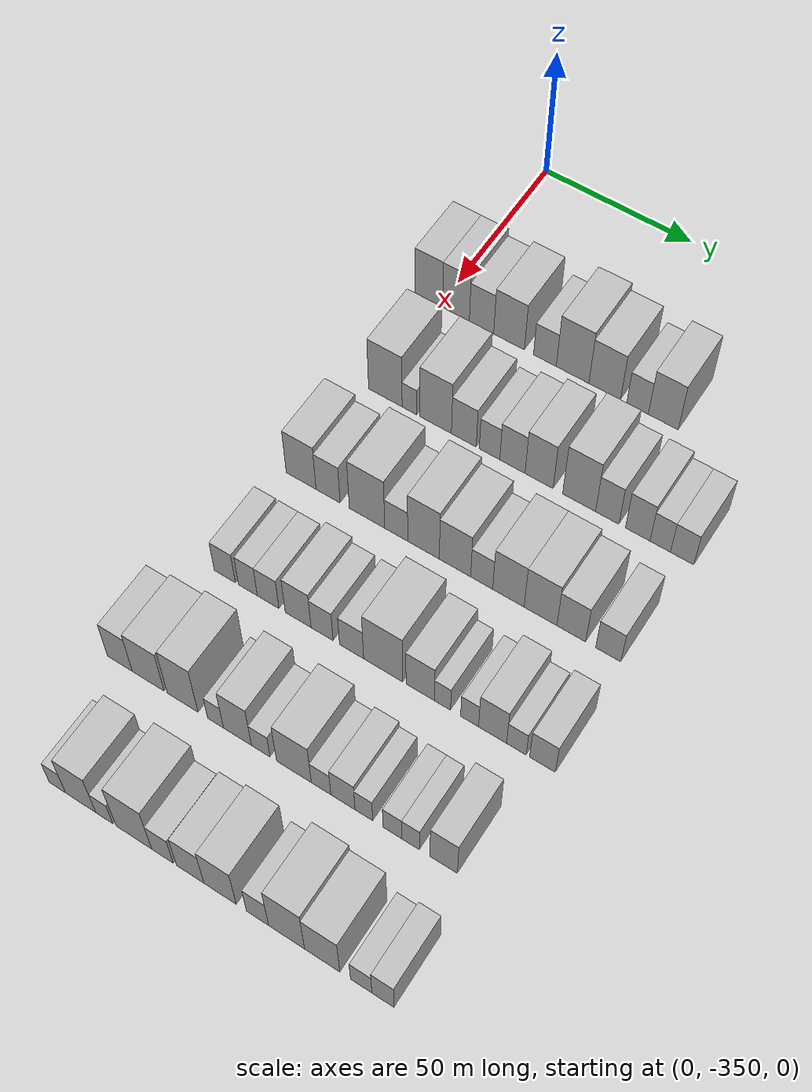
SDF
<sdf version="1.6">
 <world name="default">
  <model name="building_23">
   <static>1</static>
   <pose>50.0000 -353.7512 0 0.000000 0.000000 0.000000</pose>
   <link name="link">
    <pose>0 0 10.50 0 0 0</pose>
    <collision name="collision"><geometry><box><size>20.0000 9.3906 21.0000</size></box></geometry></collision>
    <visual name="visual">
     <cast_shadows>0</cast_shadows>
     <geometry><box><size>20.0000 9.3906 21.0000</size></box></geometry>
     <material>
      <script>
       <uri>model://HANNAS_wall/materials/scripts</uri>
       <uri>model://HANNAS_wall/materials/textures</uri>
       <name>vrc/HANNAS_wall</name>
      </script>
     </material>
    </visual>
   </link>
  </model>
  <model name="building_24">
   <static>1</static>
   <pose>50.0000 -344.5067 0 0.000000 0.000000 0.000000</pose>
   <link name="link">
    <pose>0 0 10.50 0 0 0</pose>
    <collision name="collision"><geometry><box><size>20.0000 9.0984 21.0000</size></box></geometry></collision>
    <visual name="visual">
     <cast_shadows>0</cast_shadows>
     <geometry><box><size>20.0000 9.0984 21.0000</size></box></geometry>
     <material>
      <script>
       <uri>model://HANNAS_wall/materials/scripts</uri>
       <uri>model://HANNAS_wall/materials/textures</uri>
       <name>vrc/HANNAS_wall</name>
      </script>
     </material>
    </visual>
   </link>
  </model>
  <model name="building_25">
   <static>1</static>
   <pose>50.0000 -335.8646 0 0.000000 0.000000 0.000000</pose>
   <link name="link">
    <pose>0 0 9.00 0 0 0</pose>
    <collision name="collision"><geometry><box><size>20.0000 8.1859 18.0000</size></box></geometry></collision>
    <visual name="visual">
     <cast_shadows>0</cast_shadows>
     <geometry><box><size>20.0000 8.1859 18.0000</size></box></geometry>
     <material>
      <script>
       <uri>model://HANNAS_wall/materials/scripts</uri>
       <uri>model://HANNAS_wall/materials/textures</uri>
       <name>vrc/HANNAS_wall</name>
      </script>
     </material>
    </visual>
   </link>
  </model>
  <model name="building_26">
   <static>1</static>
   <pose>50.0000 -326.6556 0 0.000000 0.000000 0.000000</pose>
   <link name="link">
    <pose>0 0 10.50 0 0 0</pose>
    <collision name="collision"><geometry><box><size>20.0000 10.2320 21.0000</size></box></geometry></collision>
    <visual name="visual">
     <cast_shadows>0</cast_shadows>
     <geometry><box><size>20.0000 10.2320 21.0000</size></box></geometry>
     <material>
      <script>
       <uri>model://HANNAS_wall/materials/scripts</uri>
       <uri>model://HANNAS_wall/materials/textures</uri>
       <name>vrc/HANNAS_wall</name>
      </script>
     </material>
    </visual>
   </link>
  </model>
  <model name="building_27">
   <static>1</static>
   <pose>50.0000 -314.8026 0 0.000000 0.000000 0.000000</pose>
   <link name="link">
    <pose>0 0 7.50 0 0 0</pose>
    <collision name="collision"><geometry><box><size>20.0000 7.4739 15.0000</size></box></geometry></collision>
    <visual name="visual">
     <cast_shadows>0</cast_shadows>
     <geometry><box><size>20.0000 7.4739 15.0000</size></box></geometry>
     <material>
      <script>
       <uri>model://HANNAS_wall/materials/scripts</uri>
       <uri>model://HANNAS_wall/materials/textures</uri>
       <name>vrc/HANNAS_wall</name>
      </script>
     </material>
    </visual>
   </link>
  </model>
  <model name="building_28">
   <static>1</static>
   <pose>50.0000 -305.7627 0 0.000000 0.000000 0.000000</pose>
   <link name="link">
    <pose>0 0 12.00 0 0 0</pose>
    <collision name="collision"><geometry><box><size>20.0000 10.6061 24.0000</size></box></geometry></collision>
    <visual name="visual">
     <cast_shadows>0</cast_shadows>
     <geometry><box><size>20.0000 10.6061 24.0000</size></box></geometry>
     <material>
      <script>
       <uri>model://HANNAS_wall/materials/scripts</uri>
       <uri>model://HANNAS_wall/materials/textures</uri>
       <name>vrc/HANNAS_wall</name>
      </script>
     </material>
    </visual>
   </link>
  </model>
  <model name="building_29">
   <static>1</static>
   <pose>50.0000 -295.3721 0 0.000000 0.000000 0.000000</pose>
   <link name="link">
    <pose>0 0 10.50 0 0 0</pose>
    <collision name="collision"><geometry><box><size>20.0000 10.1751 21.0000</size></box></geometry></collision>
    <visual name="visual">
     <cast_shadows>0</cast_shadows>
     <geometry><box><size>20.0000 10.1751 21.0000</size></box></geometry>
     <material>
      <script>
       <uri>model://HANNAS_wall/materials/scripts</uri>
       <uri>model://HANNAS_wall/materials/textures</uri>
       <name>vrc/HANNAS_wall</name>
      </script>
     </material>
    </visual>
   </link>
  </model>
  <model name="building_30">
   <static>1</static>
   <pose>50.0000 -284.8500 0 0.000000 0.000000 0.000000</pose>
   <link name="link">
    <pose>0 0 7.50 0 0 0</pose>
    <collision name="collision"><geometry><box><size>20.0000 6.8691 15.0000</size></box></geometry></collision>
    <visual name="visual">
     <cast_shadows>0</cast_shadows>
     <geometry><box><size>20.0000 6.8691 15.0000</size></box></geometry>
     <material>
      <script>
       <uri>model://HANNAS_wall/materials/scripts</uri>
       <uri>model://HANNAS_wall/materials/textures</uri>
       <name>vrc/HANNAS_wall</name>
      </script>
     </material>
    </visual>
   </link>
  </model>
  <model name="building_31">
   <static>1</static>
   <pose>50.0000 -276.6889 0 0.000000 0.000000 0.000000</pose>
   <link name="link">
    <pose>0 0 10.50 0 0 0</pose>
    <collision name="collision"><geometry><box><size>20.0000 9.4531 21.0000</size></box></geometry></collision>
    <visual name="visual">
     <cast_shadows>0</cast_shadows>
     <geometry><box><size>20.0000 9.4531 21.0000</size></box></geometry>
     <material>
      <script>
       <uri>model://HANNAS_wall/materials/scripts</uri>
       <uri>model://HANNAS_wall/materials/textures</uri>
       <name>vrc/HANNAS_wall</name>
      </script>
     </material>
    </visual>
   </link>
  </model>
  <model name="building_142">
   <static>1</static>
   <pose>85.0000 -345.7293 0 0.000000 0.000000 0.000000</pose>
   <link name="link">
    <pose>0 0 12.00 0 0 0</pose>
    <collision name="collision"><geometry><box><size>20.0000 11.1748 24.0000</size></box></geometry></collision>
    <visual name="visual">
     <cast_shadows>0</cast_shadows>
     <geometry><box><size>20.0000 11.1748 24.0000</size></box></geometry>
     <material>
      <script>
       <uri>model://HANNAS_wall/materials/scripts</uri>
       <uri>model://HANNAS_wall/materials/textures</uri>
       <name>vrc/HANNAS_wall</name>
      </script>
     </material>
    </visual>
   </link>
  </model>
  <model name="building_143">
   <static>1</static>
   <pose>85.0000 -337.7078 0 0.000000 0.000000 0.000000</pose>
   <link name="link">
    <pose>0 0 6.00 0 0 0</pose>
    <collision name="collision"><geometry><box><size>20.0000 4.8684 12.0000</size></box></geometry></collision>
    <visual name="visual">
     <cast_shadows>0</cast_shadows>
     <geometry><box><size>20.0000 4.8684 12.0000</size></box></geometry>
     <material>
      <script>
       <uri>model://HANNAS_wall/materials/scripts</uri>
       <uri>model://HANNAS_wall/materials/textures</uri>
       <name>vrc/HANNAS_wall</name>
      </script>
     </material>
    </visual>
   </link>
  </model>
  <model name="building_144">
   <static>1</static>
   <pose>85.0000 -329.1090 0 0.000000 0.000000 0.000000</pose>
   <link name="link">
    <pose>0 0 12.00 0 0 0</pose>
    <collision name="collision"><geometry><box><size>20.0000 10.3293 24.0000</size></box></geometry></collision>
    <visual name="visual">
     <cast_shadows>0</cast_shadows>
     <geometry><box><size>20.0000 10.3293 24.0000</size></box></geometry>
     <material>
      <script>
       <uri>model://HANNAS_wall/materials/scripts</uri>
       <uri>model://HANNAS_wall/materials/textures</uri>
       <name>vrc/HANNAS_wall</name>
      </script>
     </material>
    </visual>
   </link>
  </model>
  <model name="building_145">
   <static>1</static>
   <pose>85.0000 -319.9178 0 0.000000 0.000000 0.000000</pose>
   <link name="link">
    <pose>0 0 9.00 0 0 0</pose>
    <collision name="collision"><geometry><box><size>20.0000 8.0530 18.0000</size></box></geometry></collision>
    <visual name="visual">
     <cast_shadows>0</cast_shadows>
     <geometry><box><size>20.0000 8.0530 18.0000</size></box></geometry>
     <material>
      <script>
       <uri>model://HANNAS_wall/materials/scripts</uri>
       <uri>model://HANNAS_wall/materials/textures</uri>
       <name>vrc/HANNAS_wall</name>
      </script>
     </material>
    </visual>
   </link>
  </model>
  <model name="building_146">
   <static>1</static>
   <pose>85.0000 -311.6023 0 0.000000 0.000000 0.000000</pose>
   <link name="link">
    <pose>0 0 7.50 0 0 0</pose>
    <collision name="collision"><geometry><box><size>20.0000 6.5780 15.0000</size></box></geometry></collision>
    <visual name="visual">
     <cast_shadows>0</cast_shadows>
     <geometry><box><size>20.0000 6.5780 15.0000</size></box></geometry>
     <material>
      <script>
       <uri>model://HANNAS_wall/materials/scripts</uri>
       <uri>model://HANNAS_wall/materials/textures</uri>
       <name>vrc/HANNAS_wall</name>
      </script>
     </material>
    </visual>
   </link>
  </model>
  <model name="building_147">
   <static>1</static>
   <pose>85.0000 -304.2906 0 0.000000 0.000000 0.000000</pose>
   <link name="link">
    <pose>0 0 9.00 0 0 0</pose>
    <collision name="collision"><geometry><box><size>20.0000 8.0453 18.0000</size></box></geometry></collision>
    <visual name="visual">
     <cast_shadows>0</cast_shadows>
     <geometry><box><size>20.0000 8.0453 18.0000</size></box></geometry>
     <material>
      <script>
       <uri>model://HANNAS_wall/materials/scripts</uri>
       <uri>model://HANNAS_wall/materials/textures</uri>
       <name>vrc/HANNAS_wall</name>
      </script>
     </material>
    </visual>
   </link>
  </model>
  <model name="building_148">
   <static>1</static>
   <pose>85.0000 -295.8317 0 0.000000 0.000000 0.000000</pose>
   <link name="link">
    <pose>0 0 10.50 0 0 0</pose>
    <collision name="collision"><geometry><box><size>20.0000 8.8725 21.0000</size></box></geometry></collision>
    <visual name="visual">
     <cast_shadows>0</cast_shadows>
     <geometry><box><size>20.0000 8.8725 21.0000</size></box></geometry>
     <material>
      <script>
       <uri>model://HANNAS_wall/materials/scripts</uri>
       <uri>model://HANNAS_wall/materials/textures</uri>
       <name>vrc/HANNAS_wall</name>
      </script>
     </material>
    </visual>
   </link>
  </model>
  <model name="building_149">
   <static>1</static>
   <pose>85.0000 -283.2742 0 0.000000 0.000000 0.000000</pose>
   <link name="link">
    <pose>0 0 12.00 0 0 0</pose>
    <collision name="collision"><geometry><box><size>20.0000 10.2426 24.0000</size></box></geometry></collision>
    <visual name="visual">
     <cast_shadows>0</cast_shadows>
     <geometry><box><size>20.0000 10.2426 24.0000</size></box></geometry>
     <material>
      <script>
       <uri>model://HANNAS_wall/materials/scripts</uri>
       <uri>model://HANNAS_wall/materials/textures</uri>
       <name>vrc/HANNAS_wall</name>
      </script>
     </material>
    </visual>
   </link>
  </model>
  <model name="building_150">
   <static>1</static>
   <pose>85.0000 -274.5522 0 0.000000 0.000000 0.000000</pose>
   <link name="link">
    <pose>0 0 9.00 0 0 0</pose>
    <collision name="collision"><geometry><box><size>20.0000 7.2014 18.0000</size></box></geometry></collision>
    <visual name="visual">
     <cast_shadows>0</cast_shadows>
     <geometry><box><size>20.0000 7.2014 18.0000</size></box></geometry>
     <material>
      <script>
       <uri>model://HANNAS_wall/materials/scripts</uri>
       <uri>model://HANNAS_wall/materials/textures</uri>
       <name>vrc/HANNAS_wall</name>
      </script>
     </material>
    </visual>
   </link>
  </model>
  <model name="building_151">
   <static>1</static>
   <pose>85.0000 -265.1912 0 0.000000 0.000000 0.000000</pose>
   <link name="link">
    <pose>0 0 9.00 0 0 0</pose>
    <collision name="collision"><geometry><box><size>20.0000 7.5205 18.0000</size></box></geometry></collision>
    <visual name="visual">
     <cast_shadows>0</cast_shadows>
     <geometry><box><size>20.0000 7.5205 18.0000</size></box></geometry>
     <material>
      <script>
       <uri>model://HANNAS_wall/materials/scripts</uri>
       <uri>model://HANNAS_wall/materials/textures</uri>
       <name>vrc/HANNAS_wall</name>
      </script>
     </material>
    </visual>
   </link>
  </model>
  <model name="building_152">
   <static>1</static>
   <pose>85.0000 -258.3501 0 0.000000 0.000000 0.000000</pose>
   <link name="link">
    <pose>0 0 7.50 0 0 0</pose>
    <collision name="collision"><geometry><box><size>20.0000 6.1619 15.0000</size></box></geometry></collision>
    <visual name="visual">
     <cast_shadows>0</cast_shadows>
     <geometry><box><size>20.0000 6.1619 15.0000</size></box></geometry>
     <material>
      <script>
       <uri>model://HANNAS_wall/materials/scripts</uri>
       <uri>model://HANNAS_wall/materials/textures</uri>
       <name>vrc/HANNAS_wall</name>
      </script>
     </material>
    </visual>
   </link>
  </model>
  <model name="building_153">
   <static>1</static>
   <pose>85.0000 -251.7673 0 0.000000 0.000000 0.000000</pose>
   <link name="link">
    <pose>0 0 7.50 0 0 0</pose>
    <collision name="collision"><geometry><box><size>20.0000 7.0036 15.0000</size></box></geometry></collision>
    <visual name="visual">
     <cast_shadows>0</cast_shadows>
     <geometry><box><size>20.0000 7.0036 15.0000</size></box></geometry>
     <material>
      <script>
       <uri>model://HANNAS_wall/materials/scripts</uri>
       <uri>model://HANNAS_wall/materials/textures</uri>
       <name>vrc/HANNAS_wall</name>
      </script>
     </material>
    </visual>
   </link>
  </model>
  <model name="building_274">
   <static>1</static>
   <pose>120.0000 -350.0368 0 0.000000 0.000000 0.000000</pose>
   <link name="link">
    <pose>0 0 10.50 0 0 0</pose>
    <collision name="collision"><geometry><box><size>20.0000 9.8256 21.0000</size></box></geometry></collision>
    <visual name="visual">
     <cast_shadows>0</cast_shadows>
     <geometry><box><size>20.0000 9.8256 21.0000</size></box></geometry>
     <material>
      <script>
       <uri>model://HANNAS_wall/materials/scripts</uri>
       <uri>model://HANNAS_wall/materials/textures</uri>
       <name>vrc/HANNAS_wall</name>
      </script>
     </material>
    </visual>
   </link>
  </model>
  <model name="building_275">
   <static>1</static>
   <pose>120.0000 -341.2023 0 0.000000 0.000000 0.000000</pose>
   <link name="link">
    <pose>0 0 9.00 0 0 0</pose>
    <collision name="collision"><geometry><box><size>20.0000 7.8434 18.0000</size></box></geometry></collision>
    <visual name="visual">
     <cast_shadows>0</cast_shadows>
     <geometry><box><size>20.0000 7.8434 18.0000</size></box></geometry>
     <material>
      <script>
       <uri>model://HANNAS_wall/materials/scripts</uri>
       <uri>model://HANNAS_wall/materials/textures</uri>
       <name>vrc/HANNAS_wall</name>
      </script>
     </material>
    </visual>
   </link>
  </model>
  <model name="building_276">
   <static>1</static>
   <pose>120.0000 -328.5918 0 0.000000 0.000000 0.000000</pose>
   <link name="link">
    <pose>0 0 12.00 0 0 0</pose>
    <collision name="collision"><geometry><box><size>20.0000 11.3776 24.0000</size></box></geometry></collision>
    <visual name="visual">
     <cast_shadows>0</cast_shadows>
     <geometry><box><size>20.0000 11.3776 24.0000</size></box></geometry>
     <material>
      <script>
       <uri>model://HANNAS_wall/materials/scripts</uri>
       <uri>model://HANNAS_wall/materials/textures</uri>
       <name>vrc/HANNAS_wall</name>
      </script>
     </material>
    </visual>
   </link>
  </model>
  <model name="building_277">
   <static>1</static>
   <pose>120.0000 -319.2390 0 0.000000 0.000000 0.000000</pose>
   <link name="link">
    <pose>0 0 7.50 0 0 0</pose>
    <collision name="collision"><geometry><box><size>20.0000 7.3280 15.0000</size></box></geometry></collision>
    <visual name="visual">
     <cast_shadows>0</cast_shadows>
     <geometry><box><size>20.0000 7.3280 15.0000</size></box></geometry>
     <material>
      <script>
       <uri>model://HANNAS_wall/materials/scripts</uri>
       <uri>model://HANNAS_wall/materials/textures</uri>
       <name>vrc/HANNAS_wall</name>
      </script>
     </material>
    </visual>
   </link>
  </model>
  <model name="building_278">
   <static>1</static>
   <pose>120.0000 -310.6025 0 0.000000 0.000000 0.000000</pose>
   <link name="link">
    <pose>0 0 12.00 0 0 0</pose>
    <collision name="collision"><geometry><box><size>20.0000 9.9450 24.0000</size></box></geometry></collision>
    <visual name="visual">
     <cast_shadows>0</cast_shadows>
     <geometry><box><size>20.0000 9.9450 24.0000</size></box></geometry>
     <material>
      <script>
       <uri>model://HANNAS_wall/materials/scripts</uri>
       <uri>model://HANNAS_wall/materials/textures</uri>
       <name>vrc/HANNAS_wall</name>
      </script>
     </material>
    </visual>
   </link>
  </model>
  <model name="building_279">
   <static>1</static>
   <pose>120.0000 -300.7458 0 0.000000 0.000000 0.000000</pose>
   <link name="link">
    <pose>0 0 10.50 0 0 0</pose>
    <collision name="collision"><geometry><box><size>20.0000 9.7685 21.0000</size></box></geometry></collision>
    <visual name="visual">
     <cast_shadows>0</cast_shadows>
     <geometry><box><size>20.0000 9.7685 21.0000</size></box></geometry>
     <material>
      <script>
       <uri>model://HANNAS_wall/materials/scripts</uri>
       <uri>model://HANNAS_wall/materials/textures</uri>
       <name>vrc/HANNAS_wall</name>
      </script>
     </material>
    </visual>
   </link>
  </model>
  <model name="building_280">
   <static>1</static>
   <pose>120.0000 -292.4542 0 0.000000 0.000000 0.000000</pose>
   <link name="link">
    <pose>0 0 7.50 0 0 0</pose>
    <collision name="collision"><geometry><box><size>20.0000 6.8147 15.0000</size></box></geometry></collision>
    <visual name="visual">
     <cast_shadows>0</cast_shadows>
     <geometry><box><size>20.0000 6.8147 15.0000</size></box></geometry>
     <material>
      <script>
       <uri>model://HANNAS_wall/materials/scripts</uri>
       <uri>model://HANNAS_wall/materials/textures</uri>
       <name>vrc/HANNAS_wall</name>
      </script>
     </material>
    </visual>
   </link>
  </model>
  <model name="building_281">
   <static>1</static>
   <pose>120.0000 -284.2448 0 0.000000 0.000000 0.000000</pose>
   <link name="link">
    <pose>0 0 10.50 0 0 0</pose>
    <collision name="collision"><geometry><box><size>20.0000 9.6041 21.0000</size></box></geometry></collision>
    <visual name="visual">
     <cast_shadows>0</cast_shadows>
     <geometry><box><size>20.0000 9.6041 21.0000</size></box></geometry>
     <material>
      <script>
       <uri>model://HANNAS_wall/materials/scripts</uri>
       <uri>model://HANNAS_wall/materials/textures</uri>
       <name>vrc/HANNAS_wall</name>
      </script>
     </material>
    </visual>
   </link>
  </model>
  <model name="building_282">
   <static>1</static>
   <pose>120.0000 -274.4913 0 0.000000 0.000000 0.000000</pose>
   <link name="link">
    <pose>0 0 10.50 0 0 0</pose>
    <collision name="collision"><geometry><box><size>20.0000 9.9029 21.0000</size></box></geometry></collision>
    <visual name="visual">
     <cast_shadows>0</cast_shadows>
     <geometry><box><size>20.0000 9.9029 21.0000</size></box></geometry>
     <material>
      <script>
       <uri>model://HANNAS_wall/materials/scripts</uri>
       <uri>model://HANNAS_wall/materials/textures</uri>
       <name>vrc/HANNAS_wall</name>
      </script>
     </material>
    </visual>
   </link>
  </model>
  <model name="building_283">
   <static>1</static>
   <pose>120.0000 -265.2507 0 0.000000 0.000000 0.000000</pose>
   <link name="link">
    <pose>0 0 9.00 0 0 0</pose>
    <collision name="collision"><geometry><box><size>20.0000 8.5784 18.0000</size></box></geometry></collision>
    <visual name="visual">
     <cast_shadows>0</cast_shadows>
     <geometry><box><size>20.0000 8.5784 18.0000</size></box></geometry>
     <material>
      <script>
       <uri>model://HANNAS_wall/materials/scripts</uri>
       <uri>model://HANNAS_wall/materials/textures</uri>
       <name>vrc/HANNAS_wall</name>
      </script>
     </material>
    </visual>
   </link>
  </model>
  <model name="building_284">
   <static>1</static>
   <pose>120.0000 -254.2512 0 0.000000 0.000000 0.000000</pose>
   <link name="link">
    <pose>0 0 7.50 0 0 0</pose>
    <collision name="collision"><geometry><box><size>20.0000 7.4207 15.0000</size></box></geometry></collision>
    <visual name="visual">
     <cast_shadows>0</cast_shadows>
     <geometry><box><size>20.0000 7.4207 15.0000</size></box></geometry>
     <material>
      <script>
       <uri>model://HANNAS_wall/materials/scripts</uri>
       <uri>model://HANNAS_wall/materials/textures</uri>
       <name>vrc/HANNAS_wall</name>
      </script>
     </material>
    </visual>
   </link>
  </model>
  <model name="building_403">
   <static>1</static>
   <pose>155.0000 -350.2035 0 0.000000 0.000000 0.000000</pose>
   <link name="link">
    <pose>0 0 7.50 0 0 0</pose>
    <collision name="collision"><geometry><box><size>20.0000 6.8617 15.0000</size></box></geometry></collision>
    <visual name="visual">
     <cast_shadows>0</cast_shadows>
     <geometry><box><size>20.0000 6.8617 15.0000</size></box></geometry>
     <material>
      <script>
       <uri>model://HANNAS_wall/materials/scripts</uri>
       <uri>model://HANNAS_wall/materials/textures</uri>
       <name>vrc/HANNAS_wall</name>
      </script>
     </material>
    </visual>
   </link>
  </model>
  <model name="building_404">
   <static>1</static>
   <pose>155.0000 -342.7320 0 0.000000 0.000000 0.000000</pose>
   <link name="link">
    <pose>0 0 7.50 0 0 0</pose>
    <collision name="collision"><geometry><box><size>20.0000 6.0814 15.0000</size></box></geometry></collision>
    <visual name="visual">
     <cast_shadows>0</cast_shadows>
     <geometry><box><size>20.0000 6.0814 15.0000</size></box></geometry>
     <material>
      <script>
       <uri>model://HANNAS_wall/materials/scripts</uri>
       <uri>model://HANNAS_wall/materials/textures</uri>
       <name>vrc/HANNAS_wall</name>
      </script>
     </material>
    </visual>
   </link>
  </model>
  <model name="building_405">
   <static>1</static>
   <pose>155.0000 -336.2530 0 0.000000 0.000000 0.000000</pose>
   <link name="link">
    <pose>0 0 7.50 0 0 0</pose>
    <collision name="collision"><geometry><box><size>20.0000 6.8766 15.0000</size></box></geometry></collision>
    <visual name="visual">
     <cast_shadows>0</cast_shadows>
     <geometry><box><size>20.0000 6.8766 15.0000</size></box></geometry>
     <material>
      <script>
       <uri>model://HANNAS_wall/materials/scripts</uri>
       <uri>model://HANNAS_wall/materials/textures</uri>
       <name>vrc/HANNAS_wall</name>
      </script>
     </material>
    </visual>
   </link>
  </model>
  <model name="building_406">
   <static>1</static>
   <pose>155.0000 -326.7453 0 0.000000 0.000000 0.000000</pose>
   <link name="link">
    <pose>0 0 9.00 0 0 0</pose>
    <collision name="collision"><geometry><box><size>20.0000 8.1388 18.0000</size></box></geometry></collision>
    <visual name="visual">
     <cast_shadows>0</cast_shadows>
     <geometry><box><size>20.0000 8.1388 18.0000</size></box></geometry>
     <material>
      <script>
       <uri>model://HANNAS_wall/materials/scripts</uri>
       <uri>model://HANNAS_wall/materials/textures</uri>
       <name>vrc/HANNAS_wall</name>
      </script>
     </material>
    </visual>
   </link>
  </model>
  <model name="building_407">
   <static>1</static>
   <pose>155.0000 -319.2228 0 0.000000 0.000000 0.000000</pose>
   <link name="link">
    <pose>0 0 7.50 0 0 0</pose>
    <collision name="collision"><geometry><box><size>20.0000 6.9063 15.0000</size></box></geometry></collision>
    <visual name="visual">
     <cast_shadows>0</cast_shadows>
     <geometry><box><size>20.0000 6.9063 15.0000</size></box></geometry>
     <material>
      <script>
       <uri>model://HANNAS_wall/materials/scripts</uri>
       <uri>model://HANNAS_wall/materials/textures</uri>
       <name>vrc/HANNAS_wall</name>
      </script>
     </material>
    </visual>
   </link>
  </model>
  <model name="building_408">
   <static>1</static>
   <pose>155.0000 -310.0334 0 0.000000 0.000000 0.000000</pose>
   <link name="link">
    <pose>0 0 7.50 0 0 0</pose>
    <collision name="collision"><geometry><box><size>20.0000 7.4723 15.0000</size></box></geometry></collision>
    <visual name="visual">
     <cast_shadows>0</cast_shadows>
     <geometry><box><size>20.0000 7.4723 15.0000</size></box></geometry>
     <material>
      <script>
       <uri>model://HANNAS_wall/materials/scripts</uri>
       <uri>model://HANNAS_wall/materials/textures</uri>
       <name>vrc/HANNAS_wall</name>
      </script>
     </material>
    </visual>
   </link>
  </model>
  <model name="building_409">
   <static>1</static>
   <pose>155.0000 -300.3277 0 0.000000 0.000000 0.000000</pose>
   <link name="link">
    <pose>0 0 12.00 0 0 0</pose>
    <collision name="collision"><geometry><box><size>20.0000 11.9391 24.0000</size></box></geometry></collision>
    <visual name="visual">
     <cast_shadows>0</cast_shadows>
     <geometry><box><size>20.0000 11.9391 24.0000</size></box></geometry>
     <material>
      <script>
       <uri>model://HANNAS_wall/materials/scripts</uri>
       <uri>model://HANNAS_wall/materials/textures</uri>
       <name>vrc/HANNAS_wall</name>
      </script>
     </material>
    </visual>
   </link>
  </model>
  <model name="building_410">
   <static>1</static>
   <pose>155.0000 -289.0894 0 0.000000 0.000000 0.000000</pose>
   <link name="link">
    <pose>0 0 9.00 0 0 0</pose>
    <collision name="collision"><geometry><box><size>20.0000 8.5375 18.0000</size></box></geometry></collision>
    <visual name="visual">
     <cast_shadows>0</cast_shadows>
     <geometry><box><size>20.0000 8.5375 18.0000</size></box></geometry>
     <material>
      <script>
       <uri>model://HANNAS_wall/materials/scripts</uri>
       <uri>model://HANNAS_wall/materials/textures</uri>
       <name>vrc/HANNAS_wall</name>
      </script>
     </material>
    </visual>
   </link>
  </model>
  <model name="building_411">
   <static>1</static>
   <pose>155.0000 -282.4134 0 0.000000 0.000000 0.000000</pose>
   <link name="link">
    <pose>0 0 6.00 0 0 0</pose>
    <collision name="collision"><geometry><box><size>20.0000 4.8145 12.0000</size></box></geometry></collision>
    <visual name="visual">
     <cast_shadows>0</cast_shadows>
     <geometry><box><size>20.0000 4.8145 12.0000</size></box></geometry>
     <material>
      <script>
       <uri>model://HANNAS_wall/materials/scripts</uri>
       <uri>model://HANNAS_wall/materials/textures</uri>
       <name>vrc/HANNAS_wall</name>
      </script>
     </material>
    </visual>
   </link>
  </model>
  <model name="building_412">
   <static>1</static>
   <pose>155.0000 -274.3517 0 0.000000 0.000000 0.000000</pose>
   <link name="link">
    <pose>0 0 6.00 0 0 0</pose>
    <collision name="collision"><geometry><box><size>20.0000 5.3087 12.0000</size></box></geometry></collision>
    <visual name="visual">
     <cast_shadows>0</cast_shadows>
     <geometry><box><size>20.0000 5.3087 12.0000</size></box></geometry>
     <material>
      <script>
       <uri>model://HANNAS_wall/materials/scripts</uri>
       <uri>model://HANNAS_wall/materials/textures</uri>
       <name>vrc/HANNAS_wall</name>
      </script>
     </material>
    </visual>
   </link>
  </model>
  <model name="building_413">
   <static>1</static>
   <pose>155.0000 -267.5744 0 0.000000 0.000000 0.000000</pose>
   <link name="link">
    <pose>0 0 9.00 0 0 0</pose>
    <collision name="collision"><geometry><box><size>20.0000 8.2459 18.0000</size></box></geometry></collision>
    <visual name="visual">
     <cast_shadows>0</cast_shadows>
     <geometry><box><size>20.0000 8.2459 18.0000</size></box></geometry>
     <material>
      <script>
       <uri>model://HANNAS_wall/materials/scripts</uri>
       <uri>model://HANNAS_wall/materials/textures</uri>
       <name>vrc/HANNAS_wall</name>
      </script>
     </material>
    </visual>
   </link>
  </model>
  <model name="building_414">
   <static>1</static>
   <pose>155.0000 -260.6034 0 0.000000 0.000000 0.000000</pose>
   <link name="link">
    <pose>0 0 6.00 0 0 0</pose>
    <collision name="collision"><geometry><box><size>20.0000 5.6962 12.0000</size></box></geometry></collision>
    <visual name="visual">
     <cast_shadows>0</cast_shadows>
     <geometry><box><size>20.0000 5.6962 12.0000</size></box></geometry>
     <material>
      <script>
       <uri>model://HANNAS_wall/materials/scripts</uri>
       <uri>model://HANNAS_wall/materials/textures</uri>
       <name>vrc/HANNAS_wall</name>
      </script>
     </material>
    </visual>
   </link>
  </model>
  <model name="building_415">
   <static>1</static>
   <pose>155.0000 -253.0331 0 0.000000 0.000000 0.000000</pose>
   <link name="link">
    <pose>0 0 7.50 0 0 0</pose>
    <collision name="collision"><geometry><box><size>20.0000 7.4444 15.0000</size></box></geometry></collision>
    <visual name="visual">
     <cast_shadows>0</cast_shadows>
     <geometry><box><size>20.0000 7.4444 15.0000</size></box></geometry>
     <material>
      <script>
       <uri>model://HANNAS_wall/materials/scripts</uri>
       <uri>model://HANNAS_wall/materials/textures</uri>
       <name>vrc/HANNAS_wall</name>
      </script>
     </material>
    </visual>
   </link>
  </model>
  <model name="building_532">
   <static>1</static>
   <pose>190.0000 -357.9062 0 0.000000 0.000000 0.000000</pose>
   <link name="link">
    <pose>0 0 9.00 0 0 0</pose>
    <collision name="collision"><geometry><box><size>20.0000 7.9892 18.0000</size></box></geometry></collision>
    <visual name="visual">
     <cast_shadows>0</cast_shadows>
     <geometry><box><size>20.0000 7.9892 18.0000</size></box></geometry>
     <material>
      <script>
       <uri>model://HANNAS_wall/materials/scripts</uri>
       <uri>model://HANNAS_wall/materials/textures</uri>
       <name>vrc/HANNAS_wall</name>
      </script>
     </material>
    </visual>
   </link>
  </model>
  <model name="building_533">
   <static>1</static>
   <pose>190.0000 -348.8466 0 0.000000 0.000000 0.000000</pose>
   <link name="link">
    <pose>0 0 10.50 0 0 0</pose>
    <collision name="collision"><geometry><box><size>20.0000 10.1301 21.0000</size></box></geometry></collision>
    <visual name="visual">
     <cast_shadows>0</cast_shadows>
     <geometry><box><size>20.0000 10.1301 21.0000</size></box></geometry>
     <material>
      <script>
       <uri>model://HANNAS_wall/materials/scripts</uri>
       <uri>model://HANNAS_wall/materials/textures</uri>
       <name>vrc/HANNAS_wall</name>
      </script>
     </material>
    </visual>
   </link>
  </model>
  <model name="building_534">
   <static>1</static>
   <pose>190.0000 -337.9486 0 0.000000 0.000000 0.000000</pose>
   <link name="link">
    <pose>0 0 12.00 0 0 0</pose>
    <collision name="collision"><geometry><box><size>20.0000 9.6659 24.0000</size></box></geometry></collision>
    <visual name="visual">
     <cast_shadows>0</cast_shadows>
     <geometry><box><size>20.0000 9.6659 24.0000</size></box></geometry>
     <material>
      <script>
       <uri>model://HANNAS_wall/materials/scripts</uri>
       <uri>model://HANNAS_wall/materials/textures</uri>
       <name>vrc/HANNAS_wall</name>
      </script>
     </material>
    </visual>
   </link>
  </model>
  <model name="building_535">
   <static>1</static>
   <pose>190.0000 -327.6422 0 0.000000 0.000000 0.000000</pose>
   <link name="link">
    <pose>0 0 6.00 0 0 0</pose>
    <collision name="collision"><geometry><box><size>20.0000 4.9470 12.0000</size></box></geometry></collision>
    <visual name="visual">
     <cast_shadows>0</cast_shadows>
     <geometry><box><size>20.0000 4.9470 12.0000</size></box></geometry>
     <material>
      <script>
       <uri>model://HANNAS_wall/materials/scripts</uri>
       <uri>model://HANNAS_wall/materials/textures</uri>
       <name>vrc/HANNAS_wall</name>
      </script>
     </material>
    </visual>
   </link>
  </model>
  <model name="building_536">
   <static>1</static>
   <pose>190.0000 -320.8851 0 0.000000 0.000000 0.000000</pose>
   <link name="link">
    <pose>0 0 10.50 0 0 0</pose>
    <collision name="collision"><geometry><box><size>20.0000 8.5672 21.0000</size></box></geometry></collision>
    <visual name="visual">
     <cast_shadows>0</cast_shadows>
     <geometry><box><size>20.0000 8.5672 21.0000</size></box></geometry>
     <material>
      <script>
       <uri>model://HANNAS_wall/materials/scripts</uri>
       <uri>model://HANNAS_wall/materials/textures</uri>
       <name>vrc/HANNAS_wall</name>
      </script>
     </material>
    </visual>
   </link>
  </model>
  <model name="building_537">
   <static>1</static>
   <pose>190.0000 -313.7722 0 0.000000 0.000000 0.000000</pose>
   <link name="link">
    <pose>0 0 6.00 0 0 0</pose>
    <collision name="collision"><geometry><box><size>20.0000 5.6586 12.0000</size></box></geometry></collision>
    <visual name="visual">
     <cast_shadows>0</cast_shadows>
     <geometry><box><size>20.0000 5.6586 12.0000</size></box></geometry>
     <material>
      <script>
       <uri>model://HANNAS_wall/materials/scripts</uri>
       <uri>model://HANNAS_wall/materials/textures</uri>
       <name>vrc/HANNAS_wall</name>
      </script>
     </material>
    </visual>
   </link>
  </model>
  <model name="building_538">
   <static>1</static>
   <pose>190.0000 -303.7129 0 0.000000 0.000000 0.000000</pose>
   <link name="link">
    <pose>0 0 10.50 0 0 0</pose>
    <collision name="collision"><geometry><box><size>20.0000 10.4600 21.0000</size></box></geometry></collision>
    <visual name="visual">
     <cast_shadows>0</cast_shadows>
     <geometry><box><size>20.0000 10.4600 21.0000</size></box></geometry>
     <material>
      <script>
       <uri>model://HANNAS_wall/materials/scripts</uri>
       <uri>model://HANNAS_wall/materials/textures</uri>
       <name>vrc/HANNAS_wall</name>
      </script>
     </material>
    </visual>
   </link>
  </model>
  <model name="building_539">
   <static>1</static>
   <pose>190.0000 -295.5753 0 0.000000 0.000000 0.000000</pose>
   <link name="link">
    <pose>0 0 6.00 0 0 0</pose>
    <collision name="collision"><geometry><box><size>20.0000 5.8152 12.0000</size></box></geometry></collision>
    <visual name="visual">
     <cast_shadows>0</cast_shadows>
     <geometry><box><size>20.0000 5.8152 12.0000</size></box></geometry>
     <material>
      <script>
       <uri>model://HANNAS_wall/materials/scripts</uri>
       <uri>model://HANNAS_wall/materials/textures</uri>
       <name>vrc/HANNAS_wall</name>
      </script>
     </material>
    </visual>
   </link>
  </model>
  <model name="building_540">
   <static>1</static>
   <pose>190.0000 -289.0828 0 0.000000 0.000000 0.000000</pose>
   <link name="link">
    <pose>0 0 7.50 0 0 0</pose>
    <collision name="collision"><geometry><box><size>20.0000 7.1698 15.0000</size></box></geometry></collision>
    <visual name="visual">
     <cast_shadows>0</cast_shadows>
     <geometry><box><size>20.0000 7.1698 15.0000</size></box></geometry>
     <material>
      <script>
       <uri>model://HANNAS_wall/materials/scripts</uri>
       <uri>model://HANNAS_wall/materials/textures</uri>
       <name>vrc/HANNAS_wall</name>
      </script>
     </material>
    </visual>
   </link>
  </model>
  <model name="building_541">
   <static>1</static>
   <pose>190.0000 -282.9009 0 0.000000 0.000000 0.000000</pose>
   <link name="link">
    <pose>0 0 6.00 0 0 0</pose>
    <collision name="collision"><geometry><box><size>20.0000 5.1939 12.0000</size></box></geometry></collision>
    <visual name="visual">
     <cast_shadows>0</cast_shadows>
     <geometry><box><size>20.0000 5.1939 12.0000</size></box></geometry>
     <material>
      <script>
       <uri>model://HANNAS_wall/materials/scripts</uri>
       <uri>model://HANNAS_wall/materials/textures</uri>
       <name>vrc/HANNAS_wall</name>
      </script>
     </material>
    </visual>
   </link>
  </model>
  <model name="building_542">
   <static>1</static>
   <pose>190.0000 -274.5817 0 0.000000 0.000000 0.000000</pose>
   <link name="link">
    <pose>0 0 6.00 0 0 0</pose>
    <collision name="collision"><geometry><box><size>20.0000 5.4444 12.0000</size></box></geometry></collision>
    <visual name="visual">
     <cast_shadows>0</cast_shadows>
     <geometry><box><size>20.0000 5.4444 12.0000</size></box></geometry>
     <material>
      <script>
       <uri>model://HANNAS_wall/materials/scripts</uri>
       <uri>model://HANNAS_wall/materials/textures</uri>
       <name>vrc/HANNAS_wall</name>
      </script>
     </material>
    </visual>
   </link>
  </model>
  <model name="building_543">
   <static>1</static>
   <pose>190.0000 -269.3129 0 0.000000 0.000000 0.000000</pose>
   <link name="link">
    <pose>0 0 6.00 0 0 0</pose>
    <collision name="collision"><geometry><box><size>20.0000 5.0931 12.0000</size></box></geometry></collision>
    <visual name="visual">
     <cast_shadows>0</cast_shadows>
     <geometry><box><size>20.0000 5.0931 12.0000</size></box></geometry>
     <material>
      <script>
       <uri>model://HANNAS_wall/materials/scripts</uri>
       <uri>model://HANNAS_wall/materials/textures</uri>
       <name>vrc/HANNAS_wall</name>
      </script>
     </material>
    </visual>
   </link>
  </model>
  <model name="building_544">
   <static>1</static>
   <pose>190.0000 -259.8476 0 0.000000 0.000000 0.000000</pose>
   <link name="link">
    <pose>0 0 9.00 0 0 0</pose>
    <collision name="collision"><geometry><box><size>20.0000 7.8376 18.0000</size></box></geometry></collision>
    <visual name="visual">
     <cast_shadows>0</cast_shadows>
     <geometry><box><size>20.0000 7.8376 18.0000</size></box></geometry>
     <material>
      <script>
       <uri>model://HANNAS_wall/materials/scripts</uri>
       <uri>model://HANNAS_wall/materials/textures</uri>
       <name>vrc/HANNAS_wall</name>
      </script>
     </material>
    </visual>
   </link>
  </model>
  <model name="building_665">
   <static>1</static>
   <pose>225.0000 -350.2183 0 0.000000 0.000000 0.000000</pose>
   <link name="link">
    <pose>0 0 6.00 0 0 0</pose>
    <collision name="collision"><geometry><box><size>20.0000 5.1303 12.0000</size></box></geometry></collision>
    <visual name="visual">
     <cast_shadows>0</cast_shadows>
     <geometry><box><size>20.0000 5.1303 12.0000</size></box></geometry>
     <material>
      <script>
       <uri>model://HANNAS_wall/materials/scripts</uri>
       <uri>model://HANNAS_wall/materials/textures</uri>
       <name>vrc/HANNAS_wall</name>
      </script>
     </material>
    </visual>
   </link>
  </model>
  <model name="building_666">
   <static>1</static>
   <pose>225.0000 -342.9741 0 0.000000 0.000000 0.000000</pose>
   <link name="link">
    <pose>0 0 10.50 0 0 0</pose>
    <collision name="collision"><geometry><box><size>20.0000 9.3582 21.0000</size></box></geometry></collision>
    <visual name="visual">
     <cast_shadows>0</cast_shadows>
     <geometry><box><size>20.0000 9.3582 21.0000</size></box></geometry>
     <material>
      <script>
       <uri>model://HANNAS_wall/materials/scripts</uri>
       <uri>model://HANNAS_wall/materials/textures</uri>
       <name>vrc/HANNAS_wall</name>
      </script>
     </material>
    </visual>
   </link>
  </model>
  <model name="building_667">
   <static>1</static>
   <pose>225.0000 -335.6730 0 0.000000 0.000000 0.000000</pose>
   <link name="link">
    <pose>0 0 6.00 0 0 0</pose>
    <collision name="collision"><geometry><box><size>20.0000 5.2438 12.0000</size></box></geometry></collision>
    <visual name="visual">
     <cast_shadows>0</cast_shadows>
     <geometry><box><size>20.0000 5.2438 12.0000</size></box></geometry>
     <material>
      <script>
       <uri>model://HANNAS_wall/materials/scripts</uri>
       <uri>model://HANNAS_wall/materials/textures</uri>
       <name>vrc/HANNAS_wall</name>
      </script>
     </material>
    </visual>
   </link>
  </model>
  <model name="building_668">
   <static>1</static>
   <pose>225.0000 -326.6221 0 0.000000 0.000000 0.000000</pose>
   <link name="link">
    <pose>0 0 12.00 0 0 0</pose>
    <collision name="collision"><geometry><box><size>20.0000 10.8581 24.0000</size></box></geometry></collision>
    <visual name="visual">
     <cast_shadows>0</cast_shadows>
     <geometry><box><size>20.0000 10.8581 24.0000</size></box></geometry>
     <material>
      <script>
       <uri>model://HANNAS_wall/materials/scripts</uri>
       <uri>model://HANNAS_wall/materials/textures</uri>
       <name>vrc/HANNAS_wall</name>
      </script>
     </material>
    </visual>
   </link>
  </model>
  <model name="building_669">
   <static>1</static>
   <pose>225.0000 -317.9552 0 0.000000 0.000000 0.000000</pose>
   <link name="link">
    <pose>0 0 7.50 0 0 0</pose>
    <collision name="collision"><geometry><box><size>20.0000 6.4756 15.0000</size></box></geometry></collision>
    <visual name="visual">
     <cast_shadows>0</cast_shadows>
     <geometry><box><size>20.0000 6.4756 15.0000</size></box></geometry>
     <material>
      <script>
       <uri>model://HANNAS_wall/materials/scripts</uri>
       <uri>model://HANNAS_wall/materials/textures</uri>
       <name>vrc/HANNAS_wall</name>
      </script>
     </material>
    </visual>
   </link>
  </model>
  <model name="building_670">
   <static>1</static>
   <pose>225.0000 -309.6273 0 0.000000 0.000000 0.000000</pose>
   <link name="link">
    <pose>0 0 9.00 0 0 0</pose>
    <collision name="collision"><geometry><box><size>20.0000 8.1802 18.0000</size></box></geometry></collision>
    <visual name="visual">
     <cast_shadows>0</cast_shadows>
     <geometry><box><size>20.0000 8.1802 18.0000</size></box></geometry>
     <material>
      <script>
       <uri>model://HANNAS_wall/materials/scripts</uri>
       <uri>model://HANNAS_wall/materials/textures</uri>
       <name>vrc/HANNAS_wall</name>
      </script>
     </material>
    </visual>
   </link>
  </model>
  <model name="building_671">
   <static>1</static>
   <pose>225.0000 -300.7849 0 0.000000 0.000000 0.000000</pose>
   <link name="link">
    <pose>0 0 10.50 0 0 0</pose>
    <collision name="collision"><geometry><box><size>20.0000 9.5047 21.0000</size></box></geometry></collision>
    <visual name="visual">
     <cast_shadows>0</cast_shadows>
     <geometry><box><size>20.0000 9.5047 21.0000</size></box></geometry>
     <material>
      <script>
       <uri>model://HANNAS_wall/materials/scripts</uri>
       <uri>model://HANNAS_wall/materials/textures</uri>
       <name>vrc/HANNAS_wall</name>
      </script>
     </material>
    </visual>
   </link>
  </model>
  <model name="building_672">
   <static>1</static>
   <pose>225.0000 -289.8240 0 0.000000 0.000000 0.000000</pose>
   <link name="link">
    <pose>0 0 7.50 0 0 0</pose>
    <collision name="collision"><geometry><box><size>20.0000 6.4169 15.0000</size></box></geometry></collision>
    <visual name="visual">
     <cast_shadows>0</cast_shadows>
     <geometry><box><size>20.0000 6.4169 15.0000</size></box></geometry>
     <material>
      <script>
       <uri>model://HANNAS_wall/materials/scripts</uri>
       <uri>model://HANNAS_wall/materials/textures</uri>
       <name>vrc/HANNAS_wall</name>
      </script>
     </material>
    </visual>
   </link>
  </model>
  <model name="building_673">
   <static>1</static>
   <pose>225.0000 -281.4508 0 0.000000 0.000000 0.000000</pose>
   <link name="link">
    <pose>0 0 12.00 0 0 0</pose>
    <collision name="collision"><geometry><box><size>20.0000 10.3294 24.0000</size></box></geometry></collision>
    <visual name="visual">
     <cast_shadows>0</cast_shadows>
     <geometry><box><size>20.0000 10.3294 24.0000</size></box></geometry>
     <material>
      <script>
       <uri>model://HANNAS_wall/materials/scripts</uri>
       <uri>model://HANNAS_wall/materials/textures</uri>
       <name>vrc/HANNAS_wall</name>
      </script>
     </material>
    </visual>
   </link>
  </model>
  <model name="building_674">
   <static>1</static>
   <pose>225.0000 -271.3024 0 0.000000 0.000000 0.000000</pose>
   <link name="link">
    <pose>0 0 10.50 0 0 0</pose>
    <collision name="collision"><geometry><box><size>20.0000 9.9675 21.0000</size></box></geometry></collision>
    <visual name="visual">
     <cast_shadows>0</cast_shadows>
     <geometry><box><size>20.0000 9.9675 21.0000</size></box></geometry>
     <material>
      <script>
       <uri>model://HANNAS_wall/materials/scripts</uri>
       <uri>model://HANNAS_wall/materials/textures</uri>
       <name>vrc/HANNAS_wall</name>
      </script>
     </material>
    </visual>
   </link>
  </model>
  <model name="building_675">
   <static>1</static>
   <pose>225.0000 -260.3355 0 0.000000 0.000000 0.000000</pose>
   <link name="link">
    <pose>0 0 6.00 0 0 0</pose>
    <collision name="collision"><geometry><box><size>20.0000 5.9664 12.0000</size></box></geometry></collision>
    <visual name="visual">
     <cast_shadows>0</cast_shadows>
     <geometry><box><size>20.0000 5.9664 12.0000</size></box></geometry>
     <material>
      <script>
       <uri>model://HANNAS_wall/materials/scripts</uri>
       <uri>model://HANNAS_wall/materials/textures</uri>
       <name>vrc/HANNAS_wall</name>
      </script>
     </material>
    </visual>
   </link>
  </model>
  <model name="building_676">
   <static>1</static>
   <pose>225.0000 -254.2768 0 0.000000 0.000000 0.000000</pose>
   <link name="link">
    <pose>0 0 7.50 0 0 0</pose>
    <collision name="collision"><geometry><box><size>20.0000 6.1510 15.0000</size></box></geometry></collision>
    <visual name="visual">
     <cast_shadows>0</cast_shadows>
     <geometry><box><size>20.0000 6.1510 15.0000</size></box></geometry>
     <material>
      <script>
       <uri>model://HANNAS_wall/materials/scripts</uri>
       <uri>model://HANNAS_wall/materials/textures</uri>
       <name>vrc/HANNAS_wall</name>
      </script>
     </material>
    </visual>
   </link>
  </model>
 </world>
</sdf>
